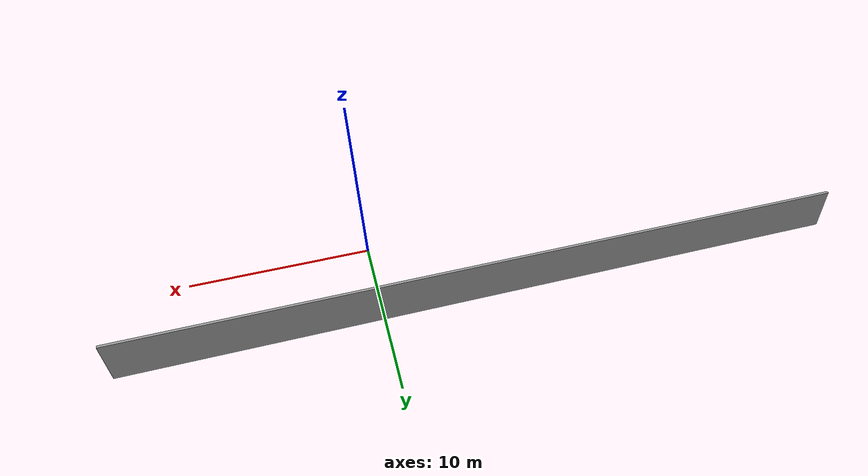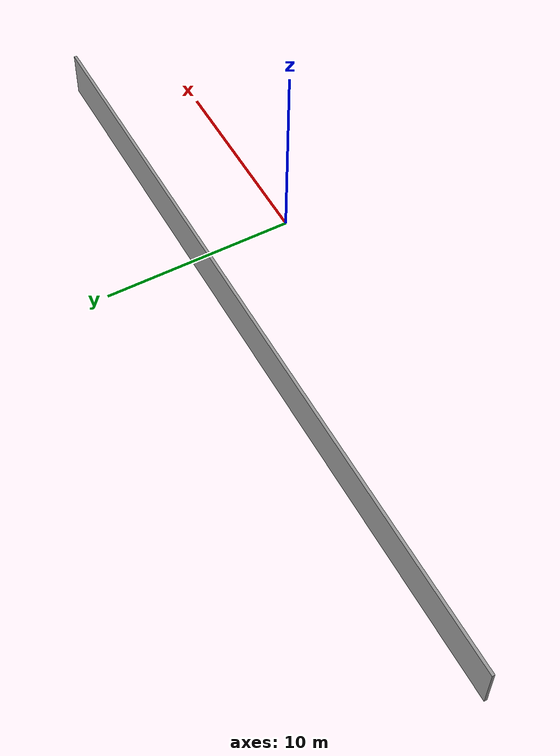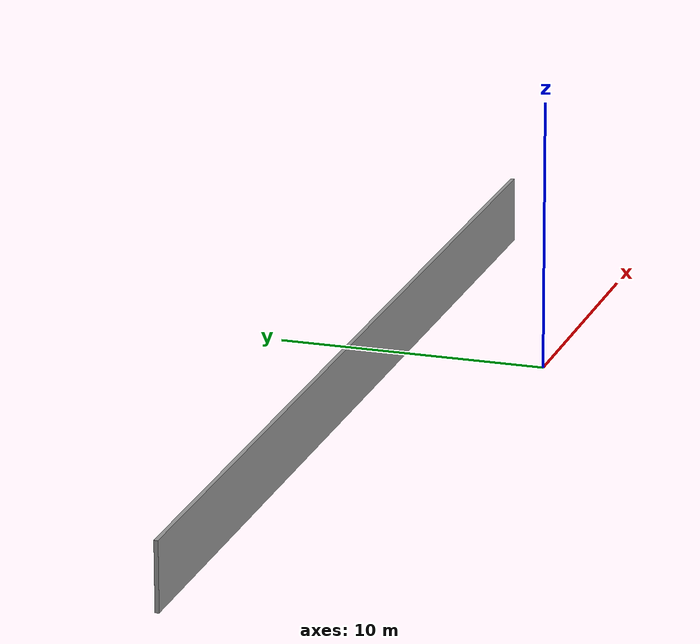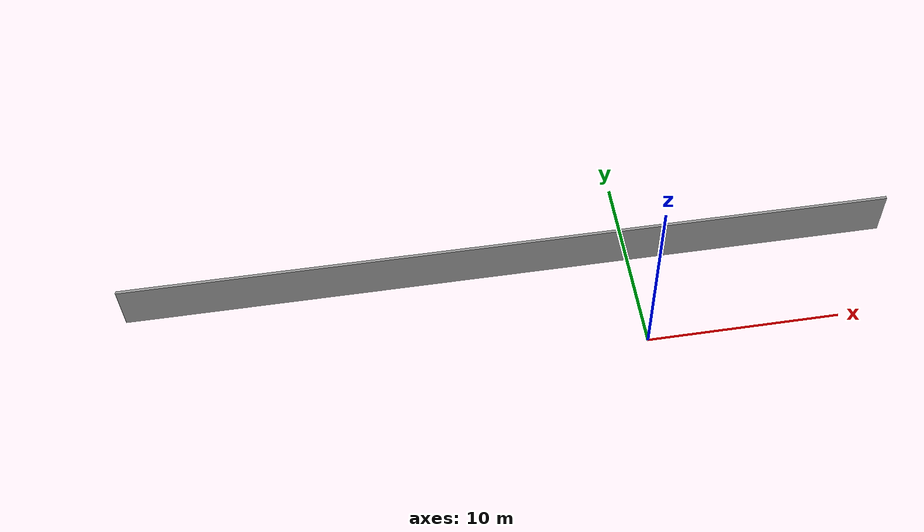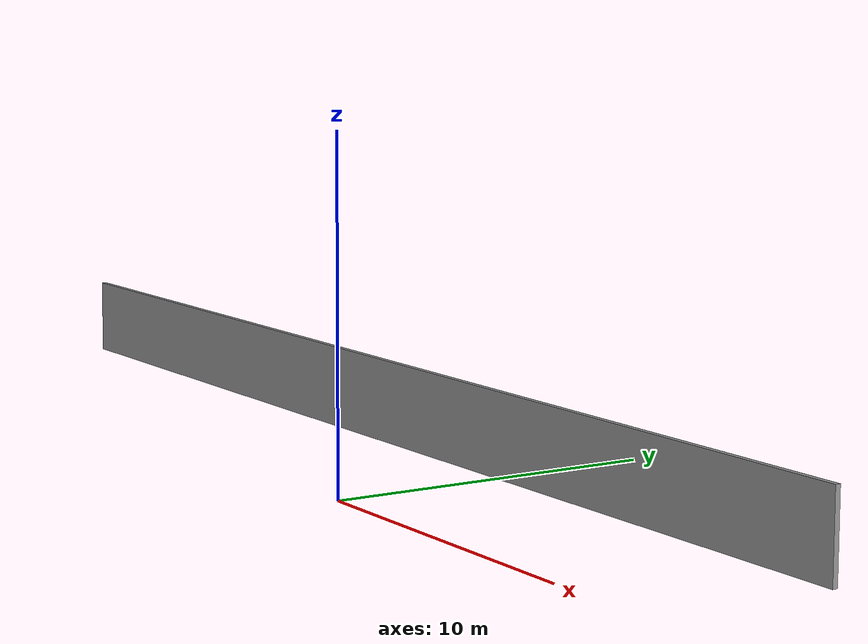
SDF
<?xml version='1.0'?>
<sdf version='1.6'>
  <model name='Wall_2'>
<link name='Wall_84'>
      <pose frame=''>-6.2 5.275 0 0 -0 3.14159</pose>
      <self_collide>0</self_collide>
      <kinematic>0</kinematic>
      <visual name='Wall_84_Visual'>
        <pose frame=''>0 0 1.25 0 -0 0</pose>
        <geometry>
          <box>
            <size>40 0.15 2.5</size>
          </box>
        </geometry>
        <material>
          <script>
              <uri>model://grey_wall/materials/scripts</uri>
            <uri>model://grey_wall/materials/textures</uri>
            <name>vrc/grey_wall</name>
          </script>
          <ambient>1 1 1 1</ambient>
          <diffuse>1 1 1 1</diffuse>
          <specular>0.2 0.2 0.2 1</specular>
          <emissive>0 0 0 1</emissive>
        </material>
        <cast_shadows>1</cast_shadows>
        <transparency>0</transparency>
      </visual>
      <collision name='Wall_84_Collision'>
        <laser_retro>0</laser_retro>
        <max_contacts>10</max_contacts>
        <pose frame=''>0 0 1.25 0 -0 0</pose>
        <geometry>
          <box>
            <size>40 0.15 2.5</size>
          </box>
        </geometry>
        <surface>
          <friction>
            <ode>
              <mu>1</mu>
              <mu2>1</mu2>
              <fdir1>0 0 0</fdir1>
              <slip1>0</slip1>
              <slip2>0</slip2>
            </ode>
            <torsional>
              <coefficient>1</coefficient>
              <patch_radius>0</patch_radius>
              <surface_radius>0</surface_radius>
              <use_patch_radius>1</use_patch_radius>
              <ode>
                <slip>0</slip>
              </ode>
            </torsional>
          </friction>
          <bounce>
            <restitution_coefficient>0</restitution_coefficient>
            <threshold>1e+06</threshold>
          </bounce>
          <contact>
            <collide_without_contact>0</collide_without_contact>
            <collide_without_contact_bitmask>1</collide_without_contact_bitmask>
            <collide_bitmask>1</collide_bitmask>
            <ode>
              <soft_cfm>0</soft_cfm>
              <soft_erp>0.2</soft_erp>
              <kp>1e+13</kp>
              <kd>1</kd>
              <max_vel>0.01</max_vel>
              <min_depth>0</min_depth>
            </ode>
            <bullet>
              <split_impulse>1</split_impulse>
              <split_impulse_penetration_threshold>-0.01</split_impulse_penetration_threshold>
              <soft_cfm>0</soft_cfm>
              <soft_erp>0.2</soft_erp>
              <kp>1e+13</kp>
              <kd>1</kd>
            </bullet>
          </contact>
        </surface>
      </collision>
    </link>
</model>
</sdf>
